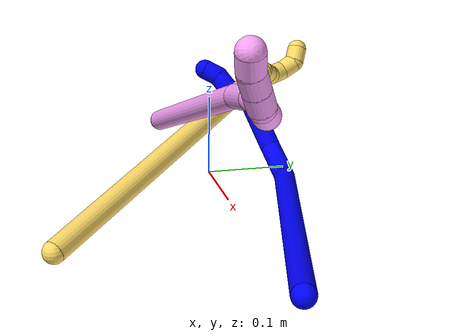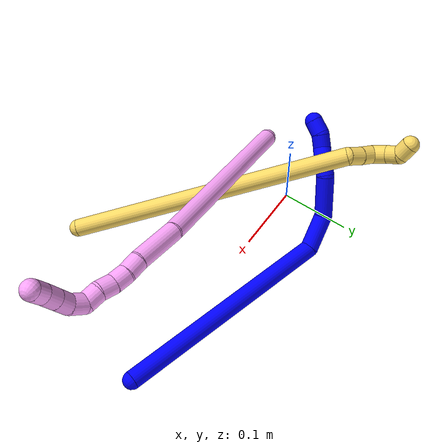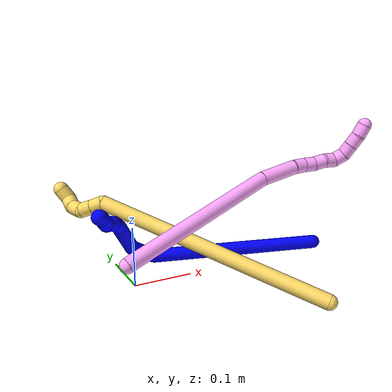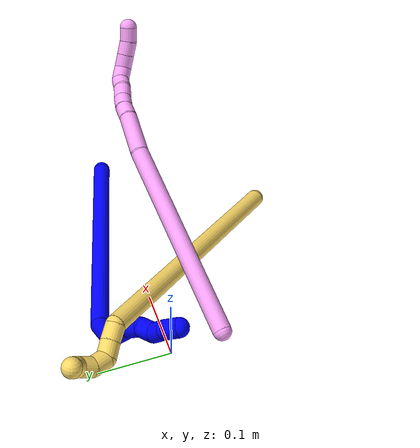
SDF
<sdf version="1.7">
 <world name="default">
  <model name="photoneo_s_sensor">
   <static>1</static>
   <pose>0 0 2 1.57079 1.57079 3.14159</pose>
   <link name="link">
    <inertial><mass>0.1</mass></inertial>
    <sensor name="sensor" type="depth">
     <update_rate>30</update_rate>
     <camera>
      <horizontal_fov>1.22</horizontal_fov>
      <image><width>1920</width><height>1200</height><format>B8G8R8</format></image>
      <clip><near>0.1</near><far>4</far></clip>
      <depth_camera><output>points</output></depth_camera>
     </camera>
     <plugin name="camera_plugin" filename="libgazebo_ros_depth_camera.so">
      <baseline>0.2</baseline>
      <alwaysOn>1</alwaysOn>
      <updateRate>0.0</updateRate>
      <cameraName>camera_ir</cameraName>
      <imageTopicName>/camera/color/image_raw</imageTopicName>
      <cameraInfoTopicName>/camera/color/camera_info</cameraInfoTopicName>
      <depthImageTopicName>/camera/depth/image_raw</depthImageTopicName>
      <depthImageCameraInfoTopicName>/camera/depth/camera_info</depthImageCameraInfoTopicName>
      <pointCloudTopicName>/camera/depth/points</pointCloudTopicName>
      <frameName>fr_optical</frameName>
      <pointCloudCutoff>0.1</pointCloudCutoff>
      <pointCloudCutoffMax>2.0</pointCloudCutoffMax>
      <distortionK1>0</distortionK1>
      <distortionK2>0</distortionK2>
      <distortionK3>0</distortionK3>
      <distortionT1>0</distortionT1>
      <distortionT2>0</distortionT2>
      <CxPrime>0</CxPrime>
      <Cx>0</Cx>
      <Cy>0</Cy>
      <focalLength>0</focalLength>
      <hackBaseline>0</hackBaseline>
     </plugin>
    </sensor>
   </link>
  </model>
  <model name="bin">
   <static>1</static>
   <link name="bottom">
    <collision name="collision-bottom">
     <pose>0 0 -0.01 0 -0 0</pose>
     <geometry><box><size>0.8 0.6 0.02</size></box></geometry>
     <surface>
      <friction><ode><mu>100</mu><mu2>100</mu2></ode></friction>
      <contact><collide_bitmask>65535</collide_bitmask></contact>
     </surface>
    </collision>
   </link>
   <link name="west_wall">
    <collision name="collision-west_wall">
     <pose>-0.41 0 0.1 0 -0 0</pose>
     <geometry><box><size>0.02 0.6 0.2</size></box></geometry>
     <surface>
      <friction><ode><mu>100</mu><mu2>100</mu2></ode></friction>
      <contact><collide_bitmask>65535</collide_bitmask></contact>
     </surface>
    </collision>
   </link>
   <link name="east_wall">
    <collision name="collision-east_wall">
     <pose>0.41 0 0.1 0 -0 0</pose>
     <geometry><box><size>0.02 0.6 0.2</size></box></geometry>
     <surface>
      <friction><ode><mu>100</mu><mu2>100</mu2></ode></friction>
      <contact><collide_bitmask>65535</collide_bitmask></contact>
     </surface>
    </collision>
   </link>
   <link name="south_wall">
    <collision name="collision-south_wall">
     <pose>0 -0.31 0.1 0 -0 0</pose>
     <geometry><box><size>0.8 0.02 0.2</size></box></geometry>
     <surface>
      <friction><ode><mu>100</mu><mu2>100</mu2></ode></friction>
      <contact><collide_bitmask>65535</collide_bitmask></contact>
     </surface>
    </collision>
   </link>
   <link name="north_wall">
    <collision name="collision-north_wall">
     <pose>0 0.31 0.1 0 -0 0</pose>
     <geometry><box><size>0.8 0.02 0.2</size></box></geometry>
     <surface>
      <friction><ode><mu>100</mu><mu2>100</mu2></ode></friction>
      <contact><collide_bitmask>65535</collide_bitmask></contact>
     </surface>
    </collision>
   </link>
  </model>
  <model name="1">
   <static>0</static>
   <link name="1">
    <collision name="collision-cylinder-e_1_1_4">
     <pose>0.047814 -0.007924 -0.14666 3.08761 0.314728 2.80455</pose>
     <geometry><cylinder><radius>0.0125</radius><length>0.308921</length></cylinder></geometry>
     <surface>
      <friction><ode><mu>1.16</mu><mu2>1.16</mu2><slip1>0</slip1><slip2>0</slip2></ode></friction>
      <contact><ode><kp>1e+06</kp><kd>1</kd><max_vel>0</max_vel><min_depth>0.001</min_depth></ode></contact>
     </surface>
    </collision>
    <visual name="visual-cylinder-e_1_1_4">
     <pose>0.047814 -0.007924 -0.14666 3.08761 0.314728 2.80455</pose>
     <geometry><cylinder><radius>0.0125</radius><length>0.308921</length></cylinder></geometry>
     <material><ambient>0 0 1 1</ambient></material>
    </visual>
    <collision name="collision-cylinder-e_2_4_5">
     <pose>0.08801 -0.021388 -0.316704 2.90899 -0.307 -1.84806</pose>
     <geometry><cylinder><radius>0.0125</radius><length>0.050421</length></cylinder></geometry>
     <surface>
      <friction><ode><mu>1.16</mu><mu2>1.16</mu2><slip1>0</slip1><slip2>0</slip2></ode></friction>
      <contact><ode><kp>1e+06</kp><kd>1</kd><max_vel>0</max_vel><min_depth>0.001</min_depth></ode></contact>
     </surface>
    </collision>
    <visual name="visual-cylinder-e_2_4_5">
     <pose>0.08801 -0.021388 -0.316704 2.90899 -0.307 -1.84806</pose>
     <geometry><cylinder><radius>0.0125</radius><length>0.050421</length></cylinder></geometry>
     <material><ambient>0 0 1 1</ambient></material>
    </visual>
    <collision name="collision-cylinder-e_3_5_6">
     <pose>0.05775 -0.032829 -0.358565 2.83245 -0.862471 -2.48856</pose>
     <geometry><cylinder><radius>0.0125</radius><length>0.059626</length></cylinder></geometry>
     <surface>
      <friction><ode><mu>1.16</mu><mu2>1.16</mu2><slip1>0</slip1><slip2>0</slip2></ode></friction>
      <contact><ode><kp>1e+06</kp><kd>1</kd><max_vel>0</max_vel><min_depth>0.001</min_depth></ode></contact>
     </surface>
    </collision>
    <visual name="visual-cylinder-e_3_5_6">
     <pose>0.05775 -0.032829 -0.358565 2.83245 -0.862471 -2.48856</pose>
     <geometry><cylinder><radius>0.0125</radius><length>0.059626</length></cylinder></geometry>
     <material><ambient>0 0 1 1</ambient></material>
    </visual>
    <collision name="collision-cylinder-e_4_6_7">
     <pose>0.028992 -0.044445 -0.382789 2.35913 -0.646429 -1.36408</pose>
     <geometry><cylinder><radius>0.0125</radius><length>0.020311</length></cylinder></geometry>
     <surface>
      <friction><ode><mu>1.16</mu><mu2>1.16</mu2><slip1>0</slip1><slip2>0</slip2></ode></friction>
      <contact><ode><kp>1e+06</kp><kd>1</kd><max_vel>0</max_vel><min_depth>0.001</min_depth></ode></contact>
     </surface>
    </collision>
    <visual name="visual-cylinder-e_4_6_7">
     <pose>0.028992 -0.044445 -0.382789 2.35913 -0.646429 -1.36408</pose>
     <geometry><cylinder><radius>0.0125</radius><length>0.020311</length></cylinder></geometry>
     <material><ambient>0 0 1 1</ambient></material>
    </visual>
    <collision name="collision-cylinder-e_5_7_8">
     <pose>0.020872 -0.057264 -0.395498 2.34597 -0.198681 -0.465761</pose>
     <geometry><cylinder><radius>0.0125</radius><length>0.02029</length></cylinder></geometry>
     <surface>
      <friction><ode><mu>1.16</mu><mu2>1.16</mu2><slip1>0</slip1><slip2>0</slip2></ode></friction>
      <contact><ode><kp>1e+06</kp><kd>1</kd><max_vel>0</max_vel><min_depth>0.001</min_depth></ode></contact>
     </surface>
    </collision>
    <visual name="visual-cylinder-e_5_7_8">
     <pose>0.020872 -0.057264 -0.395498 2.34597 -0.198681 -0.465761</pose>
     <geometry><cylinder><radius>0.0125</radius><length>0.02029</length></cylinder></geometry>
     <material><ambient>0 0 1 1</ambient></material>
    </visual>
    <collision name="collision-cylinder-e_6_8_9">
     <pose>0.011602 -0.068623 -0.408192 2.50315 -0.794273 -1.80677</pose>
     <geometry><cylinder><radius>0.0125</radius><length>0.020376</length></cylinder></geometry>
     <surface>
      <friction><ode><mu>1.16</mu><mu2>1.16</mu2><slip1>0</slip1><slip2>0</slip2></ode></friction>
      <contact><ode><kp>1e+06</kp><kd>1</kd><max_vel>0</max_vel><min_depth>0.001</min_depth></ode></contact>
     </surface>
    </collision>
    <visual name="visual-cylinder-e_6_8_9">
     <pose>0.011602 -0.068623 -0.408192 2.50315 -0.794273 -1.80677</pose>
     <geometry><cylinder><radius>0.0125</radius><length>0.020376</length></cylinder></geometry>
     <material><ambient>0 0 1 1</ambient></material>
    </visual>
    <collision name="collision-cylinder-e_7_9_2">
     <pose>-0.001335 -0.080437 -0.417281 1.98864 -0.600958 -0.889515</pose>
     <geometry><cylinder><radius>0.0125</radius><length>0.020055</length></cylinder></geometry>
     <surface>
      <friction><ode><mu>1.16</mu><mu2>1.16</mu2><slip1>0</slip1><slip2>0</slip2></ode></friction>
      <contact><ode><kp>1e+06</kp><kd>1</kd><max_vel>0</max_vel><min_depth>0.001</min_depth></ode></contact>
     </surface>
    </collision>
    <visual name="visual-cylinder-e_7_9_2">
     <pose>-0.001335 -0.080437 -0.417281 1.98864 -0.600958 -0.889515</pose>
     <geometry><cylinder><radius>0.0125</radius><length>0.020055</length></cylinder></geometry>
     <material><ambient>0 0 1 1</ambient></material>
    </visual>
    <collision name="collision-sphere-2">
     <pose>-0.007005 -0.087996 -0.420638 0 -0 0</pose>
     <geometry><sphere><radius>0.0125</radius></sphere></geometry>
     <surface>
      <friction><ode><mu>1.16</mu><mu2>1.16</mu2><slip1>0</slip1><slip2>0</slip2></ode></friction>
      <contact><ode><kp>1e+06</kp><kd>1</kd><max_vel>0</max_vel><min_depth>0.001</min_depth></ode></contact>
     </surface>
    </collision>
    <visual name="visual-sphere-2">
     <pose>-0.007005 -0.087996 -0.420638 0 -0 0</pose>
     <geometry><sphere><radius>0.0125</radius></sphere></geometry>
     <material><ambient>0 0 1 1</ambient></material>
    </visual>
    <collision name="collision-sphere-9">
     <pose>0.004335 -0.072878 -0.413925 0 -0 0</pose>
     <geometry><sphere><radius>0.0125</radius></sphere></geometry>
     <surface>
      <friction><ode><mu>1.16</mu><mu2>1.16</mu2><slip1>0</slip1><slip2>0</slip2></ode></friction>
      <contact><ode><kp>1e+06</kp><kd>1</kd><max_vel>0</max_vel><min_depth>0.001</min_depth></ode></contact>
     </surface>
    </collision>
    <visual name="visual-sphere-9">
     <pose>0.004335 -0.072878 -0.413925 0 -0 0</pose>
     <geometry><sphere><radius>0.0125</radius></sphere></geometry>
     <material><ambient>0 0 1 1</ambient></material>
    </visual>
    <collision name="collision-sphere-4">
     <pose>0.095629 -0.015849 -0.29332 0 -0 0</pose>
     <geometry><sphere><radius>0.0125</radius></sphere></geometry>
     <surface>
      <friction><ode><mu>1.16</mu><mu2>1.16</mu2><slip1>0</slip1><slip2>0</slip2></ode></friction>
      <contact><ode><kp>1e+06</kp><kd>1</kd><max_vel>0</max_vel><min_depth>0.001</min_depth></ode></contact>
     </surface>
    </collision>
    <visual name="visual-sphere-4">
     <pose>0.095629 -0.015849 -0.29332 0 -0 0</pose>
     <geometry><sphere><radius>0.0125</radius></sphere></geometry>
     <material><ambient>0 0 1 1</ambient></material>
    </visual>
    <collision name="collision-sphere-1">
     <geometry><sphere><radius>0.0125</radius></sphere></geometry>
     <surface>
      <friction><ode><mu>1.16</mu><mu2>1.16</mu2><slip1>0</slip1><slip2>0</slip2></ode></friction>
      <contact><ode><kp>1e+06</kp><kd>1</kd><max_vel>0</max_vel><min_depth>0.001</min_depth></ode></contact>
     </surface>
    </collision>
    <visual name="visual-sphere-1">
     <geometry><sphere><radius>0.0125</radius></sphere></geometry>
     <material><ambient>0 0 1 1</ambient></material>
    </visual>
    <collision name="collision-sphere-8">
     <pose>0.01887 -0.064368 -0.402458 0 -0 0</pose>
     <geometry><sphere><radius>0.0125</radius></sphere></geometry>
     <surface>
      <friction><ode><mu>1.16</mu><mu2>1.16</mu2><slip1>0</slip1><slip2>0</slip2></ode></friction>
      <contact><ode><kp>1e+06</kp><kd>1</kd><max_vel>0</max_vel><min_depth>0.001</min_depth></ode></contact>
     </surface>
    </collision>
    <visual name="visual-sphere-8">
     <pose>0.01887 -0.064368 -0.402458 0 -0 0</pose>
     <geometry><sphere><radius>0.0125</radius></sphere></geometry>
     <material><ambient>0 0 1 1</ambient></material>
    </visual>
    <collision name="collision-sphere-5">
     <pose>0.080392 -0.026928 -0.340089 0 -0 0</pose>
     <geometry><sphere><radius>0.0125</radius></sphere></geometry>
     <surface>
      <friction><ode><mu>1.16</mu><mu2>1.16</mu2><slip1>0</slip1><slip2>0</slip2></ode></friction>
      <contact><ode><kp>1e+06</kp><kd>1</kd><max_vel>0</max_vel><min_depth>0.001</min_depth></ode></contact>
     </surface>
    </collision>
    <visual name="visual-sphere-5">
     <pose>0.080392 -0.026928 -0.340089 0 -0 0</pose>
     <geometry><sphere><radius>0.0125</radius></sphere></geometry>
     <material><ambient>0 0 1 1</ambient></material>
    </visual>
    <collision name="collision-sphere-6">
     <pose>0.035109 -0.03873 -0.37704 0 -0 0</pose>
     <geometry><sphere><radius>0.0125</radius></sphere></geometry>
     <surface>
      <friction><ode><mu>1.16</mu><mu2>1.16</mu2><slip1>0</slip1><slip2>0</slip2></ode></friction>
      <contact><ode><kp>1e+06</kp><kd>1</kd><max_vel>0</max_vel><min_depth>0.001</min_depth></ode></contact>
     </surface>
    </collision>
    <visual name="visual-sphere-6">
     <pose>0.035109 -0.03873 -0.37704 0 -0 0</pose>
     <geometry><sphere><radius>0.0125</radius></sphere></geometry>
     <material><ambient>0 0 1 1</ambient></material>
    </visual>
    <collision name="collision-sphere-7">
     <pose>0.022875 -0.05016 -0.388538 0 -0 0</pose>
     <geometry><sphere><radius>0.0125</radius></sphere></geometry>
     <surface>
      <friction><ode><mu>1.16</mu><mu2>1.16</mu2><slip1>0</slip1><slip2>0</slip2></ode></friction>
      <contact><ode><kp>1e+06</kp><kd>1</kd><max_vel>0</max_vel><min_depth>0.001</min_depth></ode></contact>
     </surface>
    </collision>
    <visual name="visual-sphere-7">
     <pose>0.022875 -0.05016 -0.388538 0 -0 0</pose>
     <geometry><sphere><radius>0.0125</radius></sphere></geometry>
     <material><ambient>0 0 1 1</ambient></material>
    </visual>
    <inertial>
     <pose>0.047748 -0.02112 -0.23028 0 -0 0</pose>
     <mass>0.5</mass>
     <inertia>
      <ixx>-0.001475</ixx>
      <ixy>0</ixy>
      <ixz>0</ixz>
      <iyy>0.003109</iyy>
      <iyz>0</iyz>
      <izz>-0.000638</izz>
     </inertia>
    </inertial>
   </link>
   <pose>0.364749 -0.000209 0.012032 2.41701 1.14424 2.1467</pose>
  </model>
  <model name="4">
   <static>0</static>
   <link name="4">
    <collision name="collision-cylinder-e_1_1_4">
     <pose>0.011807 -0.000754 0.136692 0.005517 0.086161 0.000238</pose>
     <geometry><cylinder><radius>0.0125</radius><length>0.274405</length></cylinder></geometry>
     <surface>
      <friction><ode><mu>1.16</mu><mu2>1.16</mu2><slip1>0</slip1><slip2>0</slip2></ode></friction>
      <contact><ode><kp>1e+06</kp><kd>1</kd><max_vel>0</max_vel><min_depth>0.001</min_depth></ode></contact>
     </surface>
    </collision>
    <visual name="visual-cylinder-e_1_1_4">
     <pose>0.011807 -0.000754 0.136692 0.005517 0.086161 0.000238</pose>
     <geometry><cylinder><radius>0.0125</radius><length>0.274405</length></cylinder></geometry>
     <material><ambient>1 0.65098 0.996078 1</ambient></material>
    </visual>
    <collision name="collision-cylinder-e_2_4_5">
     <pose>0.026574 0.004704 0.304587 -0.196531 0.092779 -0.009153</pose>
     <geometry><cylinder><radius>0.0125</radius><length>0.063908</length></cylinder></geometry>
     <surface>
      <friction><ode><mu>1.16</mu><mu2>1.16</mu2><slip1>0</slip1><slip2>0</slip2></ode></friction>
      <contact><ode><kp>1e+06</kp><kd>1</kd><max_vel>0</max_vel><min_depth>0.001</min_depth></ode></contact>
     </surface>
    </collision>
    <visual name="visual-cylinder-e_2_4_5">
     <pose>0.026574 0.004704 0.304587 -0.196531 0.092779 -0.009153</pose>
     <geometry><cylinder><radius>0.0125</radius><length>0.063908</length></cylinder></geometry>
     <material><ambient>1 0.65098 0.996078 1</ambient></material>
    </visual>
    <collision name="collision-cylinder-e_3_5_6">
     <pose>0.02901 0.013933 0.346179 -0.282521 -0.048496 0.006898</pose>
     <geometry><cylinder><radius>0.0125</radius><length>0.021659</length></cylinder></geometry>
     <surface>
      <friction><ode><mu>1.16</mu><mu2>1.16</mu2><slip1>0</slip1><slip2>0</slip2></ode></friction>
      <contact><ode><kp>1e+06</kp><kd>1</kd><max_vel>0</max_vel><min_depth>0.001</min_depth></ode></contact>
     </surface>
    </collision>
    <visual name="visual-cylinder-e_3_5_6">
     <pose>0.02901 0.013933 0.346179 -0.282521 -0.048496 0.006898</pose>
     <geometry><cylinder><radius>0.0125</radius><length>0.021659</length></cylinder></geometry>
     <material><ambient>1 0.65098 0.996078 1</ambient></material>
    </visual>
    <collision name="collision-cylinder-e_4_6_7">
     <pose>0.029168 0.020926 0.365726 -0.409706 0.068301 -0.014196</pose>
     <geometry><cylinder><radius>0.0125</radius><length>0.020018</length></cylinder></geometry>
     <surface>
      <friction><ode><mu>1.16</mu><mu2>1.16</mu2><slip1>0</slip1><slip2>0</slip2></ode></friction>
      <contact><ode><kp>1e+06</kp><kd>1</kd><max_vel>0</max_vel><min_depth>0.001</min_depth></ode></contact>
     </surface>
    </collision>
    <visual name="visual-cylinder-e_4_6_7">
     <pose>0.029168 0.020926 0.365726 -0.409706 0.068301 -0.014196</pose>
     <geometry><cylinder><radius>0.0125</radius><length>0.020018</length></cylinder></geometry>
     <material><ambient>1 0.65098 0.996078 1</ambient></material>
    </visual>
    <collision name="collision-cylinder-e_5_7_8">
     <pose>0.03252 0.028026 0.384006 -0.329892 0.270126 -0.045232</pose>
     <geometry><cylinder><radius>0.0125</radius><length>0.020006</length></cylinder></geometry>
     <surface>
      <friction><ode><mu>1.16</mu><mu2>1.16</mu2><slip1>0</slip1><slip2>0</slip2></ode></friction>
      <contact><ode><kp>1e+06</kp><kd>1</kd><max_vel>0</max_vel><min_depth>0.001</min_depth></ode></contact>
     </surface>
    </collision>
    <visual name="visual-cylinder-e_5_7_8">
     <pose>0.03252 0.028026 0.384006 -0.329892 0.270126 -0.045232</pose>
     <geometry><cylinder><radius>0.0125</radius><length>0.020006</length></cylinder></geometry>
     <material><ambient>1 0.65098 0.996078 1</ambient></material>
    </visual>
    <collision name="collision-cylinder-e_6_8_9">
     <pose>0.035083 0.035283 0.402232 -0.426176 -0.010604 0.002294</pose>
     <geometry><cylinder><radius>0.0125</radius><length>0.020001</length></cylinder></geometry>
     <surface>
      <friction><ode><mu>1.16</mu><mu2>1.16</mu2><slip1>0</slip1><slip2>0</slip2></ode></friction>
      <contact><ode><kp>1e+06</kp><kd>1</kd><max_vel>0</max_vel><min_depth>0.001</min_depth></ode></contact>
     </surface>
    </collision>
    <visual name="visual-cylinder-e_6_8_9">
     <pose>0.035083 0.035283 0.402232 -0.426176 -0.010604 0.002294</pose>
     <geometry><cylinder><radius>0.0125</radius><length>0.020001</length></cylinder></geometry>
     <material><ambient>1 0.65098 0.996078 1</ambient></material>
    </visual>
    <collision name="collision-cylinder-e_7_9_10">
     <pose>0.041132 0.041229 0.419009 -0.231921 0.662943 -0.080137</pose>
     <geometry><cylinder><radius>0.0125</radius><length>0.020001</length></cylinder></geometry>
     <surface>
      <friction><ode><mu>1.16</mu><mu2>1.16</mu2><slip1>0</slip1><slip2>0</slip2></ode></friction>
      <contact><ode><kp>1e+06</kp><kd>1</kd><max_vel>0</max_vel><min_depth>0.001</min_depth></ode></contact>
     </surface>
    </collision>
    <visual name="visual-cylinder-e_7_9_10">
     <pose>0.041132 0.041229 0.419009 -0.231921 0.662943 -0.080137</pose>
     <geometry><cylinder><radius>0.0125</radius><length>0.020001</length></cylinder></geometry>
     <material><ambient>1 0.65098 0.996078 1</ambient></material>
    </visual>
    <collision name="collision-cylinder-e_8_10_11">
     <pose>0.055395 0.041332 0.432278 0.296287 0.945533 0.152359</pose>
     <geometry><cylinder><radius>0.0125</radius><length>0.020001</length></cylinder></geometry>
     <surface>
      <friction><ode><mu>1.16</mu><mu2>1.16</mu2><slip1>0</slip1><slip2>0</slip2></ode></friction>
      <contact><ode><kp>1e+06</kp><kd>1</kd><max_vel>0</max_vel><min_depth>0.001</min_depth></ode></contact>
     </surface>
    </collision>
    <visual name="visual-cylinder-e_8_10_11">
     <pose>0.055395 0.041332 0.432278 0.296287 0.945533 0.152359</pose>
     <geometry><cylinder><radius>0.0125</radius><length>0.020001</length></cylinder></geometry>
     <material><ambient>1 0.65098 0.996078 1</ambient></material>
    </visual>
    <collision name="collision-cylinder-e_9_11_12">
     <pose>0.071582 0.037892 0.443511 0.298081 0.940498 0.152345</pose>
     <geometry><cylinder><radius>0.0125</radius><length>0.02</length></cylinder></geometry>
     <surface>
      <friction><ode><mu>1.16</mu><mu2>1.16</mu2><slip1>0</slip1><slip2>0</slip2></ode></friction>
      <contact><ode><kp>1e+06</kp><kd>1</kd><max_vel>0</max_vel><min_depth>0.001</min_depth></ode></contact>
     </surface>
    </collision>
    <visual name="visual-cylinder-e_9_11_12">
     <pose>0.071582 0.037892 0.443511 0.298081 0.940498 0.152345</pose>
     <geometry><cylinder><radius>0.0125</radius><length>0.02</length></cylinder></geometry>
     <material><ambient>1 0.65098 0.996078 1</ambient></material>
    </visual>
    <collision name="collision-cylinder-e_10_12_2">
     <pose>0.086645 0.032821 0.455475 0.485447 0.773099 0.200886</pose>
     <geometry><cylinder><radius>0.0125</radius><length>0.02</length></cylinder></geometry>
     <surface>
      <friction><ode><mu>1.16</mu><mu2>1.16</mu2><slip1>0</slip1><slip2>0</slip2></ode></friction>
      <contact><ode><kp>1e+06</kp><kd>1</kd><max_vel>0</max_vel><min_depth>0.001</min_depth></ode></contact>
     </surface>
    </collision>
    <visual name="visual-cylinder-e_10_12_2">
     <pose>0.086645 0.032821 0.455475 0.485447 0.773099 0.200886</pose>
     <geometry><cylinder><radius>0.0125</radius><length>0.02</length></cylinder></geometry>
     <material><ambient>1 0.65098 0.996078 1</ambient></material>
    </visual>
    <collision name="collision-sphere-2">
     <pose>0.093628 0.029481 0.461806 0 -0 0</pose>
     <geometry><sphere><radius>0.0125</radius></sphere></geometry>
     <surface>
      <friction><ode><mu>1.16</mu><mu2>1.16</mu2><slip1>0</slip1><slip2>0</slip2></ode></friction>
      <contact><ode><kp>1e+06</kp><kd>1</kd><max_vel>0</max_vel><min_depth>0.001</min_depth></ode></contact>
     </surface>
    </collision>
    <visual name="visual-sphere-2">
     <pose>0.093628 0.029481 0.461806 0 -0 0</pose>
     <geometry><sphere><radius>0.0125</radius></sphere></geometry>
     <material><ambient>1 0.65098 0.996078 1</ambient></material>
    </visual>
    <collision name="collision-sphere-12">
     <pose>0.079661 0.036161 0.449145 0 -0 0</pose>
     <geometry><sphere><radius>0.0125</radius></sphere></geometry>
     <surface>
      <friction><ode><mu>1.16</mu><mu2>1.16</mu2><slip1>0</slip1><slip2>0</slip2></ode></friction>
      <contact><ode><kp>1e+06</kp><kd>1</kd><max_vel>0</max_vel><min_depth>0.001</min_depth></ode></contact>
     </surface>
    </collision>
    <visual name="visual-sphere-12">
     <pose>0.079661 0.036161 0.449145 0 -0 0</pose>
     <geometry><sphere><radius>0.0125</radius></sphere></geometry>
     <material><ambient>1 0.65098 0.996078 1</ambient></material>
    </visual>
    <collision name="collision-sphere-11">
     <pose>0.063504 0.039623 0.437877 0 -0 0</pose>
     <geometry><sphere><radius>0.0125</radius></sphere></geometry>
     <surface>
      <friction><ode><mu>1.16</mu><mu2>1.16</mu2><slip1>0</slip1><slip2>0</slip2></ode></friction>
      <contact><ode><kp>1e+06</kp><kd>1</kd><max_vel>0</max_vel><min_depth>0.001</min_depth></ode></contact>
     </surface>
    </collision>
    <visual name="visual-sphere-11">
     <pose>0.063504 0.039623 0.437877 0 -0 0</pose>
     <geometry><sphere><radius>0.0125</radius></sphere></geometry>
     <material><ambient>1 0.65098 0.996078 1</ambient></material>
    </visual>
    <collision name="collision-sphere-10">
     <pose>0.047287 0.043041 0.42668 0 -0 0</pose>
     <geometry><sphere><radius>0.0125</radius></sphere></geometry>
     <surface>
      <friction><ode><mu>1.16</mu><mu2>1.16</mu2><slip1>0</slip1><slip2>0</slip2></ode></friction>
      <contact><ode><kp>1e+06</kp><kd>1</kd><max_vel>0</max_vel><min_depth>0.001</min_depth></ode></contact>
     </surface>
    </collision>
    <visual name="visual-sphere-10">
     <pose>0.047287 0.043041 0.42668 0 -0 0</pose>
     <geometry><sphere><radius>0.0125</radius></sphere></geometry>
     <material><ambient>1 0.65098 0.996078 1</ambient></material>
    </visual>
    <collision name="collision-sphere-9">
     <pose>0.034977 0.039417 0.411338 0 -0 0</pose>
     <geometry><sphere><radius>0.0125</radius></sphere></geometry>
     <surface>
      <friction><ode><mu>1.16</mu><mu2>1.16</mu2><slip1>0</slip1><slip2>0</slip2></ode></friction>
      <contact><ode><kp>1e+06</kp><kd>1</kd><max_vel>0</max_vel><min_depth>0.001</min_depth></ode></contact>
     </surface>
    </collision>
    <visual name="visual-sphere-9">
     <pose>0.034977 0.039417 0.411338 0 -0 0</pose>
     <geometry><sphere><radius>0.0125</radius></sphere></geometry>
     <material><ambient>1 0.65098 0.996078 1</ambient></material>
    </visual>
    <collision name="collision-sphere-4">
     <pose>0.023614 -0.001508 0.273383 0 -0 0</pose>
     <geometry><sphere><radius>0.0125</radius></sphere></geometry>
     <surface>
      <friction><ode><mu>1.16</mu><mu2>1.16</mu2><slip1>0</slip1><slip2>0</slip2></ode></friction>
      <contact><ode><kp>1e+06</kp><kd>1</kd><max_vel>0</max_vel><min_depth>0.001</min_depth></ode></contact>
     </surface>
    </collision>
    <visual name="visual-sphere-4">
     <pose>0.023614 -0.001508 0.273383 0 -0 0</pose>
     <geometry><sphere><radius>0.0125</radius></sphere></geometry>
     <material><ambient>1 0.65098 0.996078 1</ambient></material>
    </visual>
    <collision name="collision-sphere-1">
     <geometry><sphere><radius>0.0125</radius></sphere></geometry>
     <surface>
      <friction><ode><mu>1.16</mu><mu2>1.16</mu2><slip1>0</slip1><slip2>0</slip2></ode></friction>
      <contact><ode><kp>1e+06</kp><kd>1</kd><max_vel>0</max_vel><min_depth>0.001</min_depth></ode></contact>
     </surface>
    </collision>
    <visual name="visual-sphere-1">
     <geometry><sphere><radius>0.0125</radius></sphere></geometry>
     <material><ambient>1 0.65098 0.996078 1</ambient></material>
    </visual>
    <collision name="collision-sphere-8">
     <pose>0.035189 0.031149 0.393127 0 -0 0</pose>
     <geometry><sphere><radius>0.0125</radius></sphere></geometry>
     <surface>
      <friction><ode><mu>1.16</mu><mu2>1.16</mu2><slip1>0</slip1><slip2>0</slip2></ode></friction>
      <contact><ode><kp>1e+06</kp><kd>1</kd><max_vel>0</max_vel><min_depth>0.001</min_depth></ode></contact>
     </surface>
    </collision>
    <visual name="visual-sphere-8">
     <pose>0.035189 0.031149 0.393127 0 -0 0</pose>
     <geometry><sphere><radius>0.0125</radius></sphere></geometry>
     <material><ambient>1 0.65098 0.996078 1</ambient></material>
    </visual>
    <collision name="collision-sphere-5">
     <pose>0.029535 0.010917 0.335791 0 -0 0</pose>
     <geometry><sphere><radius>0.0125</radius></sphere></geometry>
     <surface>
      <friction><ode><mu>1.16</mu><mu2>1.16</mu2><slip1>0</slip1><slip2>0</slip2></ode></friction>
      <contact><ode><kp>1e+06</kp><kd>1</kd><max_vel>0</max_vel><min_depth>0.001</min_depth></ode></contact>
     </surface>
    </collision>
    <visual name="visual-sphere-5">
     <pose>0.029535 0.010917 0.335791 0 -0 0</pose>
     <geometry><sphere><radius>0.0125</radius></sphere></geometry>
     <material><ambient>1 0.65098 0.996078 1</ambient></material>
    </visual>
    <collision name="collision-sphere-6">
     <pose>0.028485 0.016948 0.356567 0 -0 0</pose>
     <geometry><sphere><radius>0.0125</radius></sphere></geometry>
     <surface>
      <friction><ode><mu>1.16</mu><mu2>1.16</mu2><slip1>0</slip1><slip2>0</slip2></ode></friction>
      <contact><ode><kp>1e+06</kp><kd>1</kd><max_vel>0</max_vel><min_depth>0.001</min_depth></ode></contact>
     </surface>
    </collision>
    <visual name="visual-sphere-6">
     <pose>0.028485 0.016948 0.356567 0 -0 0</pose>
     <geometry><sphere><radius>0.0125</radius></sphere></geometry>
     <material><ambient>1 0.65098 0.996078 1</ambient></material>
    </visual>
    <collision name="collision-sphere-7">
     <pose>0.029851 0.024904 0.374885 0 -0 0</pose>
     <geometry><sphere><radius>0.0125</radius></sphere></geometry>
     <surface>
      <friction><ode><mu>1.16</mu><mu2>1.16</mu2><slip1>0</slip1><slip2>0</slip2></ode></friction>
      <contact><ode><kp>1e+06</kp><kd>1</kd><max_vel>0</max_vel><min_depth>0.001</min_depth></ode></contact>
     </surface>
    </collision>
    <visual name="visual-sphere-7">
     <pose>0.029851 0.024904 0.374885 0 -0 0</pose>
     <geometry><sphere><radius>0.0125</radius></sphere></geometry>
     <material><ambient>1 0.65098 0.996078 1</ambient></material>
    </visual>
    <inertial>
     <pose>0.025196 0.010293 0.245055 0 -0 0</pose>
     <mass>0.5</mass>
     <inertia>
      <ixx>0.001768</ixx>
      <ixy>0</ixy>
      <ixz>0</ixz>
      <iyy>0.00177</iyy>
      <iyz>0</iyz>
      <izz>-0.000116</izz>
     </inertia>
    </inertial>
   </link>
   <pose>-0.030552 -0.058071 0.064866 -1.16133 -0.772685 -1.68834</pose>
  </model>
  <model name="5">
   <static>0</static>
   <link name="5">
    <collision name="collision-cylinder-e_1_1_4">
     <pose>-0.105405 0.168543 0.001459 -1.56214 -0.558865 0.554292</pose>
     <geometry><cylinder><radius>0.0125</radius><length>0.397588</length></cylinder></geometry>
     <surface>
      <friction><ode><mu>1.16</mu><mu2>1.16</mu2><slip1>0</slip1><slip2>0</slip2></ode></friction>
      <contact><ode><kp>1e+06</kp><kd>1</kd><max_vel>0</max_vel><min_depth>0.001</min_depth></ode></contact>
     </surface>
    </collision>
    <visual name="visual-cylinder-e_1_1_4">
     <pose>-0.105405 0.168543 0.001459 -1.56214 -0.558865 0.554292</pose>
     <geometry><cylinder><radius>0.0125</radius><length>0.397588</length></cylinder></geometry>
     <material><ambient>1 0.858824 0.4 1</ambient></material>
    </visual>
    <collision name="collision-cylinder-e_2_4_5">
     <pose>-0.216692 0.343165 -0.003783 -2.40473 -0.576449 1.30979</pose>
     <geometry><cylinder><radius>0.0125</radius><length>0.021582</length></cylinder></geometry>
     <surface>
      <friction><ode><mu>1.16</mu><mu2>1.16</mu2><slip1>0</slip1><slip2>0</slip2></ode></friction>
      <contact><ode><kp>1e+06</kp><kd>1</kd><max_vel>0</max_vel><min_depth>0.001</min_depth></ode></contact>
     </surface>
    </collision>
    <visual name="visual-cylinder-e_2_4_5">
     <pose>-0.216692 0.343165 -0.003783 -2.40473 -0.576449 1.30979</pose>
     <geometry><cylinder><radius>0.0125</radius><length>0.021582</length></cylinder></geometry>
     <material><ambient>1 0.858824 0.4 1</ambient></material>
    </visual>
    <collision name="collision-cylinder-e_3_5_6">
     <pose>-0.22878 0.35456 -0.016315 -2.40249 -0.666397 1.45845</pose>
     <geometry><cylinder><radius>0.0125</radius><length>0.020077</length></cylinder></geometry>
     <surface>
      <friction><ode><mu>1.16</mu><mu2>1.16</mu2><slip1>0</slip1><slip2>0</slip2></ode></friction>
      <contact><ode><kp>1e+06</kp><kd>1</kd><max_vel>0</max_vel><min_depth>0.001</min_depth></ode></contact>
     </surface>
    </collision>
    <visual name="visual-cylinder-e_3_5_6">
     <pose>-0.22878 0.35456 -0.016315 -2.40249 -0.666397 1.45845</pose>
     <geometry><cylinder><radius>0.0125</radius><length>0.020077</length></cylinder></geometry>
     <material><ambient>1 0.858824 0.4 1</ambient></material>
    </visual>
    <collision name="collision-cylinder-e_4_6_7">
     <pose>-0.237995 0.369561 -0.022918 -1.65025 -0.300386 0.324834</pose>
     <geometry><cylinder><radius>0.0125</radius><length>0.020344</length></cylinder></geometry>
     <surface>
      <friction><ode><mu>1.16</mu><mu2>1.16</mu2><slip1>0</slip1><slip2>0</slip2></ode></friction>
      <contact><ode><kp>1e+06</kp><kd>1</kd><max_vel>0</max_vel><min_depth>0.001</min_depth></ode></contact>
     </surface>
    </collision>
    <visual name="visual-cylinder-e_4_6_7">
     <pose>-0.237995 0.369561 -0.022918 -1.65025 -0.300386 0.324834</pose>
     <geometry><cylinder><radius>0.0125</radius><length>0.020344</length></cylinder></geometry>
     <material><ambient>1 0.858824 0.4 1</ambient></material>
    </visual>
    <collision name="collision-cylinder-e_5_7_8">
     <pose>-0.241108 0.388801 -0.020389 -1.2382 -0.010184 0.007256</pose>
     <geometry><cylinder><radius>0.0125</radius><length>0.020217</length></cylinder></geometry>
     <surface>
      <friction><ode><mu>1.16</mu><mu2>1.16</mu2><slip1>0</slip1><slip2>0</slip2></ode></friction>
      <contact><ode><kp>1e+06</kp><kd>1</kd><max_vel>0</max_vel><min_depth>0.001</min_depth></ode></contact>
     </surface>
    </collision>
    <visual name="visual-cylinder-e_5_7_8">
     <pose>-0.241108 0.388801 -0.020389 -1.2382 -0.010184 0.007256</pose>
     <geometry><cylinder><radius>0.0125</radius><length>0.020217</length></cylinder></geometry>
     <material><ambient>1 0.858824 0.4 1</ambient></material>
    </visual>
    <collision name="collision-cylinder-e_6_8_2">
     <pose>-0.247112 0.404055 -0.011206 -0.769603 -0.624332 0.259922</pose>
     <geometry><cylinder><radius>0.0125</radius><length>0.020191</length></cylinder></geometry>
     <surface>
      <friction><ode><mu>1.16</mu><mu2>1.16</mu2><slip1>0</slip1><slip2>0</slip2></ode></friction>
      <contact><ode><kp>1e+06</kp><kd>1</kd><max_vel>0</max_vel><min_depth>0.001</min_depth></ode></contact>
     </surface>
    </collision>
    <visual name="visual-cylinder-e_6_8_2">
     <pose>-0.247112 0.404055 -0.011206 -0.769603 -0.624332 0.259922</pose>
     <geometry><cylinder><radius>0.0125</radius><length>0.020191</length></cylinder></geometry>
     <material><ambient>1 0.858824 0.4 1</ambient></material>
    </visual>
    <collision name="collision-sphere-2">
     <pose>-0.253014 0.409755 -0.005323 0 -0 0</pose>
     <geometry><sphere><radius>0.0125</radius></sphere></geometry>
     <surface>
      <friction><ode><mu>1.16</mu><mu2>1.16</mu2><slip1>0</slip1><slip2>0</slip2></ode></friction>
      <contact><ode><kp>1e+06</kp><kd>1</kd><max_vel>0</max_vel><min_depth>0.001</min_depth></ode></contact>
     </surface>
    </collision>
    <visual name="visual-sphere-2">
     <pose>-0.253014 0.409755 -0.005323 0 -0 0</pose>
     <geometry><sphere><radius>0.0125</radius></sphere></geometry>
     <material><ambient>1 0.858824 0.4 1</ambient></material>
    </visual>
    <collision name="collision-sphere-4">
     <pose>-0.210811 0.337086 0.002918 0 -0 0</pose>
     <geometry><sphere><radius>0.0125</radius></sphere></geometry>
     <surface>
      <friction><ode><mu>1.16</mu><mu2>1.16</mu2><slip1>0</slip1><slip2>0</slip2></ode></friction>
      <contact><ode><kp>1e+06</kp><kd>1</kd><max_vel>0</max_vel><min_depth>0.001</min_depth></ode></contact>
     </surface>
    </collision>
    <visual name="visual-sphere-4">
     <pose>-0.210811 0.337086 0.002918 0 -0 0</pose>
     <geometry><sphere><radius>0.0125</radius></sphere></geometry>
     <material><ambient>1 0.858824 0.4 1</ambient></material>
    </visual>
    <collision name="collision-sphere-1">
     <geometry><sphere><radius>0.0125</radius></sphere></geometry>
     <surface>
      <friction><ode><mu>1.16</mu><mu2>1.16</mu2><slip1>0</slip1><slip2>0</slip2></ode></friction>
      <contact><ode><kp>1e+06</kp><kd>1</kd><max_vel>0</max_vel><min_depth>0.001</min_depth></ode></contact>
     </surface>
    </collision>
    <visual name="visual-sphere-1">
     <geometry><sphere><radius>0.0125</radius></sphere></geometry>
     <material><ambient>1 0.858824 0.4 1</ambient></material>
    </visual>
    <collision name="collision-sphere-8">
     <pose>-0.241211 0.398355 -0.017089 0 -0 0</pose>
     <geometry><sphere><radius>0.0125</radius></sphere></geometry>
     <surface>
      <friction><ode><mu>1.16</mu><mu2>1.16</mu2><slip1>0</slip1><slip2>0</slip2></ode></friction>
      <contact><ode><kp>1e+06</kp><kd>1</kd><max_vel>0</max_vel><min_depth>0.001</min_depth></ode></contact>
     </surface>
    </collision>
    <visual name="visual-sphere-8">
     <pose>-0.241211 0.398355 -0.017089 0 -0 0</pose>
     <geometry><sphere><radius>0.0125</radius></sphere></geometry>
     <material><ambient>1 0.858824 0.4 1</ambient></material>
    </visual>
    <collision name="collision-sphere-5">
     <pose>-0.222574 0.349245 -0.010483 0 -0 0</pose>
     <geometry><sphere><radius>0.0125</radius></sphere></geometry>
     <surface>
      <friction><ode><mu>1.16</mu><mu2>1.16</mu2><slip1>0</slip1><slip2>0</slip2></ode></friction>
      <contact><ode><kp>1e+06</kp><kd>1</kd><max_vel>0</max_vel><min_depth>0.001</min_depth></ode></contact>
     </surface>
    </collision>
    <visual name="visual-sphere-5">
     <pose>-0.222574 0.349245 -0.010483 0 -0 0</pose>
     <geometry><sphere><radius>0.0125</radius></sphere></geometry>
     <material><ambient>1 0.858824 0.4 1</ambient></material>
    </visual>
    <collision name="collision-sphere-6">
     <pose>-0.234985 0.359876 -0.022147 0 -0 0</pose>
     <geometry><sphere><radius>0.0125</radius></sphere></geometry>
     <surface>
      <friction><ode><mu>1.16</mu><mu2>1.16</mu2><slip1>0</slip1><slip2>0</slip2></ode></friction>
      <contact><ode><kp>1e+06</kp><kd>1</kd><max_vel>0</max_vel><min_depth>0.001</min_depth></ode></contact>
     </surface>
    </collision>
    <visual name="visual-sphere-6">
     <pose>-0.234985 0.359876 -0.022147 0 -0 0</pose>
     <geometry><sphere><radius>0.0125</radius></sphere></geometry>
     <material><ambient>1 0.858824 0.4 1</ambient></material>
    </visual>
    <collision name="collision-sphere-7">
     <pose>-0.241005 0.379247 -0.023689 0 -0 0</pose>
     <geometry><sphere><radius>0.0125</radius></sphere></geometry>
     <surface>
      <friction><ode><mu>1.16</mu><mu2>1.16</mu2><slip1>0</slip1><slip2>0</slip2></ode></friction>
      <contact><ode><kp>1e+06</kp><kd>1</kd><max_vel>0</max_vel><min_depth>0.001</min_depth></ode></contact>
     </surface>
    </collision>
    <visual name="visual-sphere-7">
     <pose>-0.241005 0.379247 -0.023689 0 -0 0</pose>
     <geometry><sphere><radius>0.0125</radius></sphere></geometry>
     <material><ambient>1 0.858824 0.4 1</ambient></material>
    </visual>
    <inertial>
     <pose>-0.131767 0.210145 -0.001868 0 -0 0</pose>
     <mass>0.5</mass>
     <inertia>
      <ixx>0.006119</ixx>
      <ixy>0</ixy>
      <ixz>0</ixz>
      <iyy>0.003887</iyy>
      <iyz>0</iyz>
      <izz>-0.001671</izz>
     </inertia>
    </inertial>
   </link>
   <pose>0.227209 -0.211674 0.011498 0.193237 0.229434 0.19269</pose>
  </model>
 </world>
</sdf>
